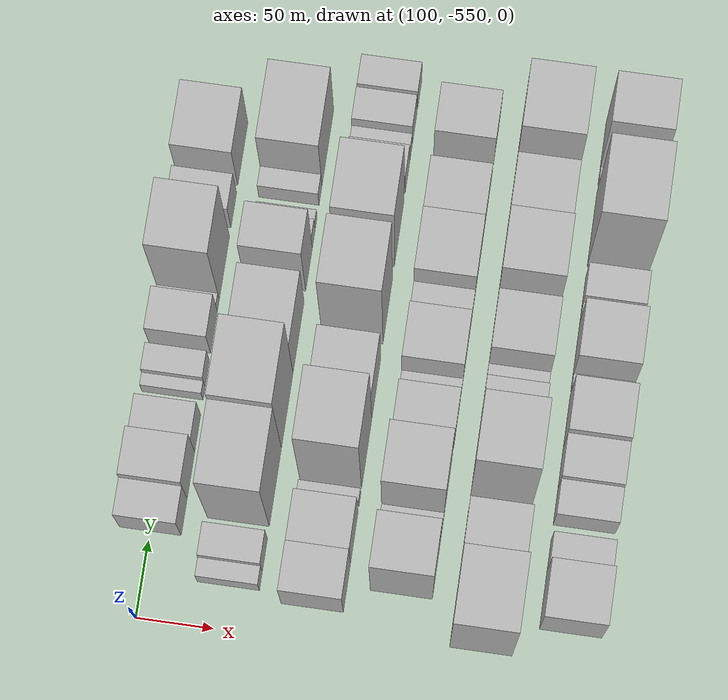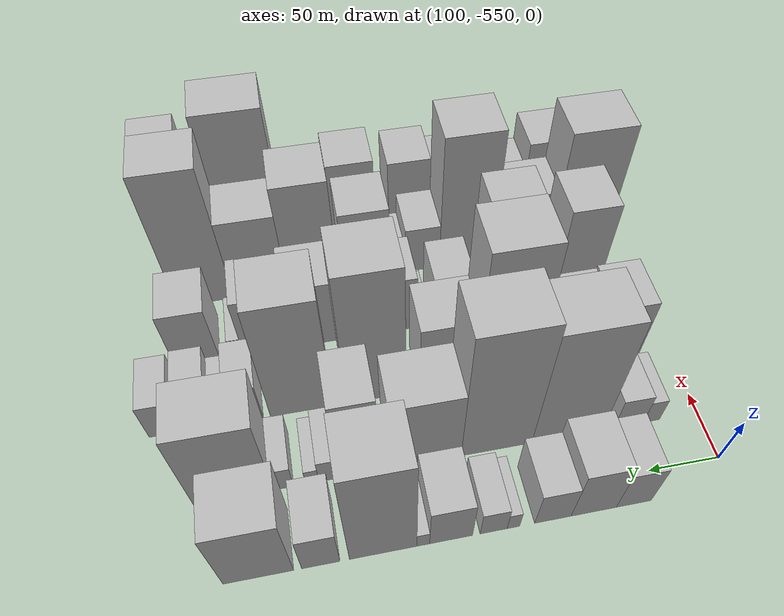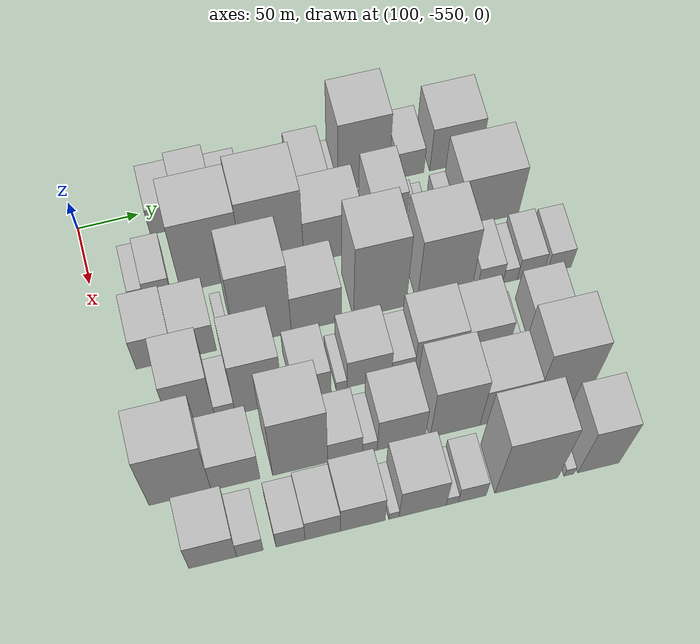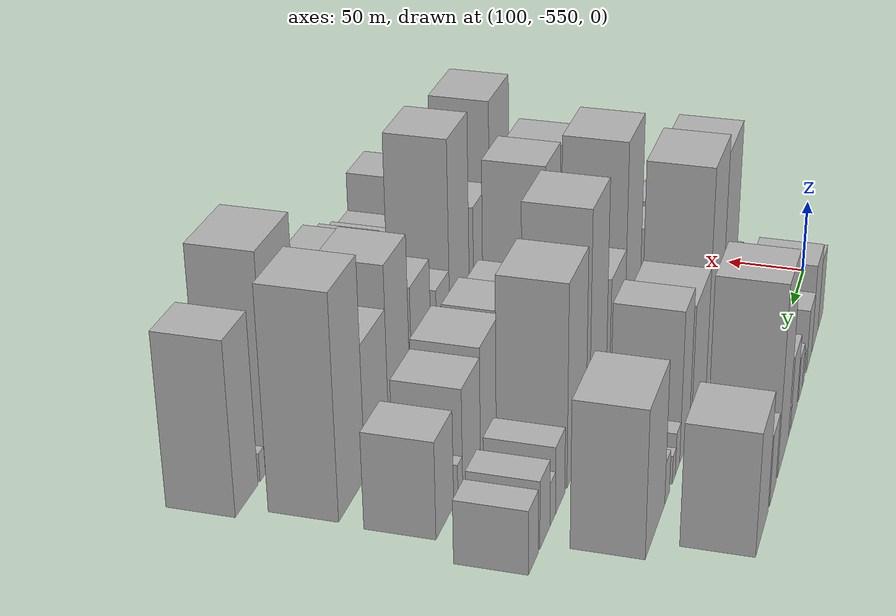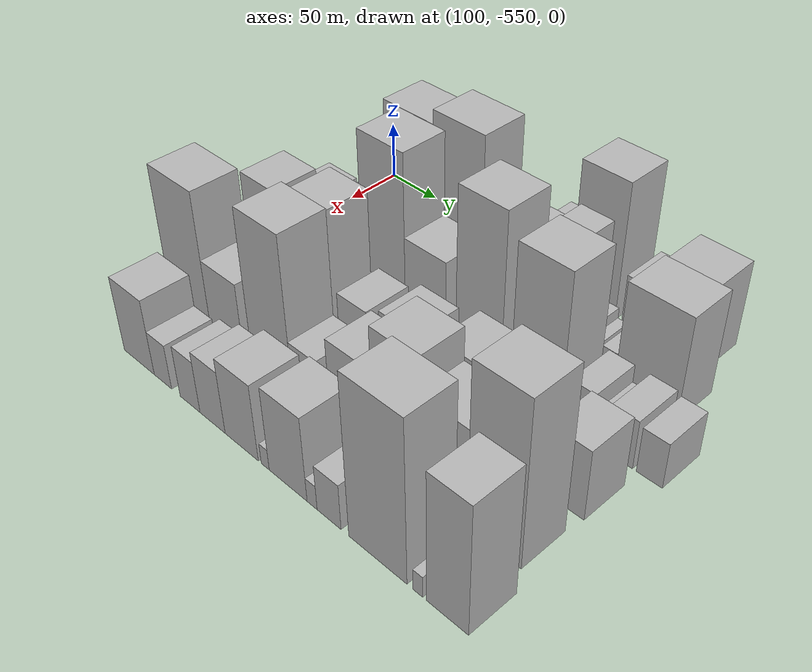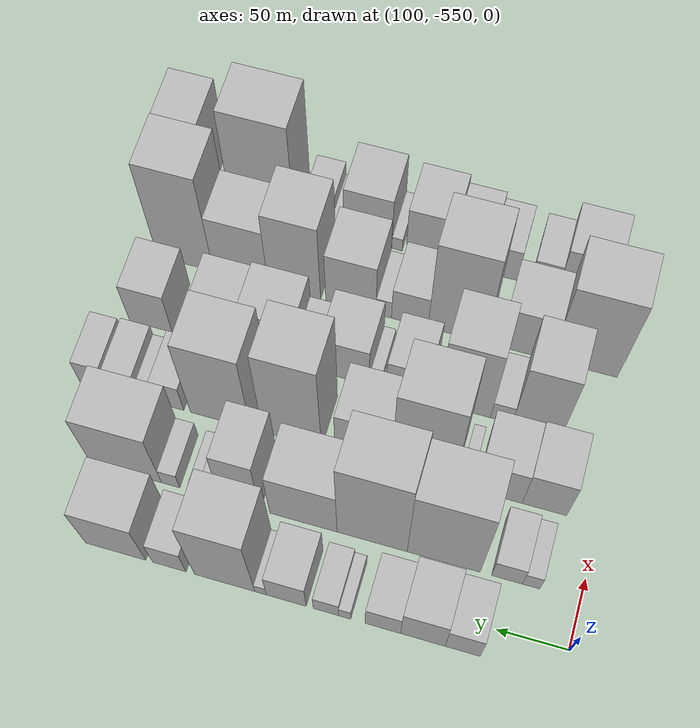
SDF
<sdf version="1.6">
 <world name="default">
  <model name="building_13">
   <static>1</static>
   <pose>100.0000 -481.6354 0 0.000000 0.000000 0.000000</pose>
   <link name="link">
    <pose>0 0 24.00 0 0 0</pose>
    <collision name="collision"><geometry><box><size>40.0000 24.1601 48.0000</size></box></geometry></collision>
    <visual name="visual">
     <cast_shadows>0</cast_shadows>
     <geometry><box><size>40.0000 24.1601 48.0000</size></box></geometry>
     <material>
      <script>
       <uri>model://HANNAS_wall/materials/scripts</uri>
       <uri>model://HANNAS_wall/materials/textures</uri>
       <name>vrc/HANNAS_wall</name>
      </script>
     </material>
    </visual>
   </link>
  </model>
  <model name="building_14">
   <static>1</static>
   <pose>100.0000 -454.1454 0 0.000000 0.000000 0.000000</pose>
   <link name="link">
    <pose>0 0 30.00 0 0 0</pose>
    <collision name="collision"><geometry><box><size>40.0000 30.8198 60.0000</size></box></geometry></collision>
    <visual name="visual">
     <cast_shadows>0</cast_shadows>
     <geometry><box><size>40.0000 30.8198 60.0000</size></box></geometry>
     <material>
      <script>
       <uri>model://HANNAS_wall/materials/scripts</uri>
       <uri>model://HANNAS_wall/materials/textures</uri>
       <name>vrc/HANNAS_wall</name>
      </script>
     </material>
    </visual>
   </link>
  </model>
  <model name="building_15">
   <static>1</static>
   <pose>100.0000 -426.4296 0 0.000000 0.000000 0.000000</pose>
   <link name="link">
    <pose>0 0 21.00 0 0 0</pose>
    <collision name="collision"><geometry><box><size>40.0000 24.6120 42.0000</size></box></geometry></collision>
    <visual name="visual">
     <cast_shadows>0</cast_shadows>
     <geometry><box><size>40.0000 24.6120 42.0000</size></box></geometry>
     <material>
      <script>
       <uri>model://HANNAS_wall/materials/scripts</uri>
       <uri>model://HANNAS_wall/materials/textures</uri>
       <name>vrc/HANNAS_wall</name>
      </script>
     </material>
    </visual>
   </link>
  </model>
  <model name="building_16">
   <static>1</static>
   <pose>100.0000 -399.9136 0 0.000000 0.000000 0.000000</pose>
   <link name="link">
    <pose>0 0 10.50 0 0 0</pose>
    <collision name="collision"><geometry><box><size>40.0000 8.4200 21.0000</size></box></geometry></collision>
    <visual name="visual">
     <cast_shadows>0</cast_shadows>
     <geometry><box><size>40.0000 8.4200 21.0000</size></box></geometry>
     <material>
      <script>
       <uri>model://HANNAS_wall/materials/scripts</uri>
       <uri>model://HANNAS_wall/materials/textures</uri>
       <name>vrc/HANNAS_wall</name>
      </script>
     </material>
    </visual>
   </link>
  </model>
  <model name="building_17">
   <static>1</static>
   <pose>100.0000 -386.7798 0 0.000000 0.000000 0.000000</pose>
   <link name="link">
    <pose>0 0 15.00 0 0 0</pose>
    <collision name="collision"><geometry><box><size>40.0000 17.8474 30.0000</size></box></geometry></collision>
    <visual name="visual">
     <cast_shadows>0</cast_shadows>
     <geometry><box><size>40.0000 17.8474 30.0000</size></box></geometry>
     <material>
      <script>
       <uri>model://HANNAS_wall/materials/scripts</uri>
       <uri>model://HANNAS_wall/materials/textures</uri>
       <name>vrc/HANNAS_wall</name>
      </script>
     </material>
    </visual>
   </link>
  </model>
  <model name="building_18">
   <static>1</static>
   <pose>100.0000 -358.8407 0 0.000000 0.000000 0.000000</pose>
   <link name="link">
    <pose>0 0 24.00 0 0 0</pose>
    <collision name="collision"><geometry><box><size>40.0000 28.0308 48.0000</size></box></geometry></collision>
    <visual name="visual">
     <cast_shadows>0</cast_shadows>
     <geometry><box><size>40.0000 28.0308 48.0000</size></box></geometry>
     <material>
      <script>
       <uri>model://HANNAS_wall/materials/scripts</uri>
       <uri>model://HANNAS_wall/materials/textures</uri>
       <name>vrc/HANNAS_wall</name>
      </script>
     </material>
    </visual>
   </link>
  </model>
  <model name="building_19">
   <static>1</static>
   <pose>100.0000 -340.6961 0 0.000000 0.000000 0.000000</pose>
   <link name="link">
    <pose>0 0 9.00 0 0 0</pose>
    <collision name="collision"><geometry><box><size>40.0000 8.2584 18.0000</size></box></geometry></collision>
    <visual name="visual">
     <cast_shadows>0</cast_shadows>
     <geometry><box><size>40.0000 8.2584 18.0000</size></box></geometry>
     <material>
      <script>
       <uri>model://HANNAS_wall/materials/scripts</uri>
       <uri>model://HANNAS_wall/materials/textures</uri>
       <name>vrc/HANNAS_wall</name>
      </script>
     </material>
    </visual>
   </link>
  </model>
  <model name="building_20">
   <static>1</static>
   <pose>100.0000 -314.9943 0 0.000000 0.000000 0.000000</pose>
   <link name="link">
    <pose>0 0 60.00 0 0 0</pose>
    <collision name="collision"><geometry><box><size>40.0000 43.1453 120.0000</size></box></geometry></collision>
    <visual name="visual">
     <cast_shadows>0</cast_shadows>
     <geometry><box><size>40.0000 43.1453 120.0000</size></box></geometry>
     <material>
      <script>
       <uri>model://HANNAS_wall/materials/scripts</uri>
       <uri>model://HANNAS_wall/materials/textures</uri>
       <name>vrc/HANNAS_wall</name>
      </script>
     </material>
    </visual>
   </link>
  </model>
  <model name="building_21">
   <static>1</static>
   <pose>100.0000 -275.4120 0 0.000000 0.000000 0.000000</pose>
   <link name="link">
    <pose>0 0 22.50 0 0 0</pose>
    <collision name="collision"><geometry><box><size>40.0000 24.0193 45.0000</size></box></geometry></collision>
    <visual name="visual">
     <cast_shadows>0</cast_shadows>
     <geometry><box><size>40.0000 24.0193 45.0000</size></box></geometry>
     <material>
      <script>
       <uri>model://HANNAS_wall/materials/scripts</uri>
       <uri>model://HANNAS_wall/materials/textures</uri>
       <name>vrc/HANNAS_wall</name>
      </script>
     </material>
    </visual>
   </link>
  </model>
  <model name="building_22">
   <static>1</static>
   <pose>100.0000 -236.6050 0 0.000000 0.000000 0.000000</pose>
   <link name="link">
    <pose>0 0 37.50 0 0 0</pose>
    <collision name="collision"><geometry><box><size>40.0000 43.5947 75.0000</size></box></geometry></collision>
    <visual name="visual">
     <cast_shadows>0</cast_shadows>
     <geometry><box><size>40.0000 43.5947 75.0000</size></box></geometry>
     <material>
      <script>
       <uri>model://HANNAS_wall/materials/scripts</uri>
       <uri>model://HANNAS_wall/materials/textures</uri>
       <name>vrc/HANNAS_wall</name>
      </script>
     </material>
    </visual>
   </link>
  </model>
  <model name="building_64">
   <static>1</static>
   <pose>155.0000 -515.5749 0 0.000000 0.000000 0.000000</pose>
   <link name="link">
    <pose>0 0 13.50 0 0 0</pose>
    <collision name="collision"><geometry><box><size>40.0000 12.0809 27.0000</size></box></geometry></collision>
    <visual name="visual">
     <cast_shadows>0</cast_shadows>
     <geometry><box><size>40.0000 12.0809 27.0000</size></box></geometry>
     <material>
      <script>
       <uri>model://HANNAS_wall/materials/scripts</uri>
       <uri>model://HANNAS_wall/materials/textures</uri>
       <name>vrc/HANNAS_wall</name>
      </script>
     </material>
    </visual>
   </link>
  </model>
  <model name="building_65">
   <static>1</static>
   <pose>155.0000 -498.7532 0 0.000000 0.000000 0.000000</pose>
   <link name="link">
    <pose>0 0 18.00 0 0 0</pose>
    <collision name="collision"><geometry><box><size>40.0000 21.5627 36.0000</size></box></geometry></collision>
    <visual name="visual">
     <cast_shadows>0</cast_shadows>
     <geometry><box><size>40.0000 21.5627 36.0000</size></box></geometry>
     <material>
      <script>
       <uri>model://HANNAS_wall/materials/scripts</uri>
       <uri>model://HANNAS_wall/materials/textures</uri>
       <name>vrc/HANNAS_wall</name>
      </script>
     </material>
    </visual>
   </link>
  </model>
  <model name="building_66">
   <static>1</static>
   <pose>155.0000 -454.1949 0 0.000000 0.000000 0.000000</pose>
   <link name="link">
    <pose>0 0 66.00 0 0 0</pose>
    <collision name="collision"><geometry><box><size>40.0000 51.5539 132.0000</size></box></geometry></collision>
    <visual name="visual">
     <cast_shadows>0</cast_shadows>
     <geometry><box><size>40.0000 51.5539 132.0000</size></box></geometry>
     <material>
      <script>
       <uri>model://HANNAS_wall/materials/scripts</uri>
       <uri>model://HANNAS_wall/materials/textures</uri>
       <name>vrc/HANNAS_wall</name>
      </script>
     </material>
    </visual>
   </link>
  </model>
  <model name="building_67">
   <static>1</static>
   <pose>155.0000 -403.4001 0 0.000000 0.000000 0.000000</pose>
   <link name="link">
    <pose>0 0 72.00 0 0 0</pose>
    <collision name="collision"><geometry><box><size>40.0000 50.0356 144.0000</size></box></geometry></collision>
    <visual name="visual">
     <cast_shadows>0</cast_shadows>
     <geometry><box><size>40.0000 50.0356 144.0000</size></box></geometry>
     <material>
      <script>
       <uri>model://HANNAS_wall/materials/scripts</uri>
       <uri>model://HANNAS_wall/materials/textures</uri>
       <name>vrc/HANNAS_wall</name>
      </script>
     </material>
    </visual>
   </link>
  </model>
  <model name="building_68">
   <static>1</static>
   <pose>155.0000 -354.1777 0 0.000000 0.000000 0.000000</pose>
   <link name="link">
    <pose>0 0 40.50 0 0 0</pose>
    <collision name="collision"><geometry><box><size>40.0000 48.4093 81.0000</size></box></geometry></collision>
    <visual name="visual">
     <cast_shadows>0</cast_shadows>
     <geometry><box><size>40.0000 48.4093 81.0000</size></box></geometry>
     <material>
      <script>
       <uri>model://HANNAS_wall/materials/scripts</uri>
       <uri>model://HANNAS_wall/materials/textures</uri>
       <name>vrc/HANNAS_wall</name>
      </script>
     </material>
    </visual>
   </link>
  </model>
  <model name="building_69">
   <static>1</static>
   <pose>155.0000 -308.4458 0 0.000000 0.000000 0.000000</pose>
   <link name="link">
    <pose>0 0 48.00 0 0 0</pose>
    <collision name="collision"><geometry><box><size>40.0000 29.0544 96.0000</size></box></geometry></collision>
    <visual name="visual">
     <cast_shadows>0</cast_shadows>
     <geometry><box><size>40.0000 29.0544 96.0000</size></box></geometry>
     <material>
      <script>
       <uri>model://HANNAS_wall/materials/scripts</uri>
       <uri>model://HANNAS_wall/materials/textures</uri>
       <name>vrc/HANNAS_wall</name>
      </script>
     </material>
    </visual>
   </link>
  </model>
  <model name="building_70">
   <static>1</static>
   <pose>155.0000 -287.5103 0 0.000000 0.000000 0.000000</pose>
   <link name="link">
    <pose>0 0 13.50 0 0 0</pose>
    <collision name="collision"><geometry><box><size>40.0000 12.8167 27.0000</size></box></geometry></collision>
    <visual name="visual">
     <cast_shadows>0</cast_shadows>
     <geometry><box><size>40.0000 12.8167 27.0000</size></box></geometry>
     <material>
      <script>
       <uri>model://HANNAS_wall/materials/scripts</uri>
       <uri>model://HANNAS_wall/materials/textures</uri>
       <name>vrc/HANNAS_wall</name>
      </script>
     </material>
    </visual>
   </link>
  </model>
  <model name="building_71">
   <static>1</static>
   <pose>155.0000 -276.6305 0 0.000000 0.000000 0.000000</pose>
   <link name="link">
    <pose>0 0 9.00 0 0 0</pose>
    <collision name="collision"><geometry><box><size>40.0000 8.9430 18.0000</size></box></geometry></collision>
    <visual name="visual">
     <cast_shadows>0</cast_shadows>
     <geometry><box><size>40.0000 8.9430 18.0000</size></box></geometry>
     <material>
      <script>
       <uri>model://HANNAS_wall/materials/scripts</uri>
       <uri>model://HANNAS_wall/materials/textures</uri>
       <name>vrc/HANNAS_wall</name>
      </script>
     </material>
    </visual>
   </link>
  </model>
  <model name="building_72">
   <static>1</static>
   <pose>155.0000 -257.4332 0 0.000000 0.000000 0.000000</pose>
   <link name="link">
    <pose>0 0 13.50 0 0 0</pose>
    <collision name="collision"><geometry><box><size>40.0000 13.4516 27.0000</size></box></geometry></collision>
    <visual name="visual">
     <cast_shadows>0</cast_shadows>
     <geometry><box><size>40.0000 13.4516 27.0000</size></box></geometry>
     <material>
      <script>
       <uri>model://HANNAS_wall/materials/scripts</uri>
       <uri>model://HANNAS_wall/materials/textures</uri>
       <name>vrc/HANNAS_wall</name>
      </script>
     </material>
    </visual>
   </link>
  </model>
  <model name="building_73">
   <static>1</static>
   <pose>155.0000 -224.4726 0 0.000000 0.000000 0.000000</pose>
   <link name="link">
    <pose>0 0 45.00 0 0 0</pose>
    <collision name="collision"><geometry><box><size>40.0000 52.4696 90.0000</size></box></geometry></collision>
    <visual name="visual">
     <cast_shadows>0</cast_shadows>
     <geometry><box><size>40.0000 52.4696 90.0000</size></box></geometry>
     <material>
      <script>
       <uri>model://HANNAS_wall/materials/scripts</uri>
       <uri>model://HANNAS_wall/materials/textures</uri>
       <name>vrc/HANNAS_wall</name>
      </script>
     </material>
    </visual>
   </link>
  </model>
  <model name="building_116">
   <static>1</static>
   <pose>210.0000 -512.0512 0 0.000000 0.000000 0.000000</pose>
   <link name="link">
    <pose>0 0 31.50 0 0 0</pose>
    <collision name="collision"><geometry><box><size>40.0000 31.7108 63.0000</size></box></geometry></collision>
    <visual name="visual">
     <cast_shadows>0</cast_shadows>
     <geometry><box><size>40.0000 31.7108 63.0000</size></box></geometry>
     <material>
      <script>
       <uri>model://HANNAS_wall/materials/scripts</uri>
       <uri>model://HANNAS_wall/materials/textures</uri>
       <name>vrc/HANNAS_wall</name>
      </script>
     </material>
    </visual>
   </link>
  </model>
  <model name="building_117">
   <static>1</static>
   <pose>210.0000 -479.5767 0 0.000000 0.000000 0.000000</pose>
   <link name="link">
    <pose>0 0 30.00 0 0 0</pose>
    <collision name="collision"><geometry><box><size>40.0000 33.2381 60.0000</size></box></geometry></collision>
    <visual name="visual">
     <cast_shadows>0</cast_shadows>
     <geometry><box><size>40.0000 33.2381 60.0000</size></box></geometry>
     <material>
      <script>
       <uri>model://HANNAS_wall/materials/scripts</uri>
       <uri>model://HANNAS_wall/materials/textures</uri>
       <name>vrc/HANNAS_wall</name>
      </script>
     </material>
    </visual>
   </link>
  </model>
  <model name="building_118">
   <static>1</static>
   <pose>210.0000 -454.7564 0 0.000000 0.000000 0.000000</pose>
   <link name="link">
    <pose>0 0 10.50 0 0 0</pose>
    <collision name="collision"><geometry><box><size>40.0000 8.4026 21.0000</size></box></geometry></collision>
    <visual name="visual">
     <cast_shadows>0</cast_shadows>
     <geometry><box><size>40.0000 8.4026 21.0000</size></box></geometry>
     <material>
      <script>
       <uri>model://HANNAS_wall/materials/scripts</uri>
       <uri>model://HANNAS_wall/materials/textures</uri>
       <name>vrc/HANNAS_wall</name>
      </script>
     </material>
    </visual>
   </link>
  </model>
  <model name="building_119">
   <static>1</static>
   <pose>210.0000 -424.7437 0 0.000000 0.000000 0.000000</pose>
   <link name="link">
    <pose>0 0 72.00 0 0 0</pose>
    <collision name="collision"><geometry><box><size>40.0000 45.6228 144.0000</size></box></geometry></collision>
    <visual name="visual">
     <cast_shadows>0</cast_shadows>
     <geometry><box><size>40.0000 45.6228 144.0000</size></box></geometry>
     <material>
      <script>
       <uri>model://HANNAS_wall/materials/scripts</uri>
       <uri>model://HANNAS_wall/materials/textures</uri>
       <name>vrc/HANNAS_wall</name>
      </script>
     </material>
    </visual>
   </link>
  </model>
  <model name="building_120">
   <static>1</static>
   <pose>210.0000 -381.4199 0 0.000000 0.000000 0.000000</pose>
   <link name="link">
    <pose>0 0 37.50 0 0 0</pose>
    <collision name="collision"><geometry><box><size>40.0000 41.0248 75.0000</size></box></geometry></collision>
    <visual name="visual">
     <cast_shadows>0</cast_shadows>
     <geometry><box><size>40.0000 41.0248 75.0000</size></box></geometry>
     <material>
      <script>
       <uri>model://HANNAS_wall/materials/scripts</uri>
       <uri>model://HANNAS_wall/materials/textures</uri>
       <name>vrc/HANNAS_wall</name>
      </script>
     </material>
    </visual>
   </link>
  </model>
  <model name="building_121">
   <static>1</static>
   <pose>210.0000 -329.2158 0 0.000000 0.000000 0.000000</pose>
   <link name="link">
    <pose>0 0 72.00 0 0 0</pose>
    <collision name="collision"><geometry><box><size>40.0000 43.3836 144.0000</size></box></geometry></collision>
    <visual name="visual">
     <cast_shadows>0</cast_shadows>
     <geometry><box><size>40.0000 43.3836 144.0000</size></box></geometry>
     <material>
      <script>
       <uri>model://HANNAS_wall/materials/scripts</uri>
       <uri>model://HANNAS_wall/materials/textures</uri>
       <name>vrc/HANNAS_wall</name>
      </script>
     </material>
    </visual>
   </link>
  </model>
  <model name="building_122">
   <static>1</static>
   <pose>210.0000 -275.9784 0 0.000000 0.000000 0.000000</pose>
   <link name="link">
    <pose>0 0 63.00 0 0 0</pose>
    <collision name="collision"><geometry><box><size>40.0000 45.0911 126.0000</size></box></geometry></collision>
    <visual name="visual">
     <cast_shadows>0</cast_shadows>
     <geometry><box><size>40.0000 45.0911 126.0000</size></box></geometry>
     <material>
      <script>
       <uri>model://HANNAS_wall/materials/scripts</uri>
       <uri>model://HANNAS_wall/materials/textures</uri>
       <name>vrc/HANNAS_wall</name>
      </script>
     </material>
    </visual>
   </link>
  </model>
  <model name="building_123">
   <static>1</static>
   <pose>210.0000 -237.7855 0 0.000000 0.000000 0.000000</pose>
   <link name="link">
    <pose>0 0 21.00 0 0 0</pose>
    <collision name="collision"><geometry><box><size>40.0000 21.2947 42.0000</size></box></geometry></collision>
    <visual name="visual">
     <cast_shadows>0</cast_shadows>
     <geometry><box><size>40.0000 21.2947 42.0000</size></box></geometry>
     <material>
      <script>
       <uri>model://HANNAS_wall/materials/scripts</uri>
       <uri>model://HANNAS_wall/materials/textures</uri>
       <name>vrc/HANNAS_wall</name>
      </script>
     </material>
    </visual>
   </link>
  </model>
  <model name="building_124">
   <static>1</static>
   <pose>210.0000 -221.0467 0 0.000000 0.000000 0.000000</pose>
   <link name="link">
    <pose>0 0 13.50 0 0 0</pose>
    <collision name="collision"><geometry><box><size>40.0000 12.1828 27.0000</size></box></geometry></collision>
    <visual name="visual">
     <cast_shadows>0</cast_shadows>
     <geometry><box><size>40.0000 12.1828 27.0000</size></box></geometry>
     <material>
      <script>
       <uri>model://HANNAS_wall/materials/scripts</uri>
       <uri>model://HANNAS_wall/materials/textures</uri>
       <name>vrc/HANNAS_wall</name>
      </script>
     </material>
    </visual>
   </link>
  </model>
  <model name="building_125">
   <static>1</static>
   <pose>210.0000 -204.0303 0 0.000000 0.000000 0.000000</pose>
   <link name="link">
    <pose>0 0 21.00 0 0 0</pose>
    <collision name="collision"><geometry><box><size>40.0000 21.8500 42.0000</size></box></geometry></collision>
    <visual name="visual">
     <cast_shadows>0</cast_shadows>
     <geometry><box><size>40.0000 21.8500 42.0000</size></box></geometry>
     <material>
      <script>
       <uri>model://HANNAS_wall/materials/scripts</uri>
       <uri>model://HANNAS_wall/materials/textures</uri>
       <name>vrc/HANNAS_wall</name>
      </script>
     </material>
    </visual>
   </link>
  </model>
  <model name="building_126">
   <static>1</static>
   <pose>210.0000 -179.8747 0 0.000000 0.000000 0.000000</pose>
   <link name="link">
    <pose>0 0 19.50 0 0 0</pose>
    <collision name="collision"><geometry><box><size>40.0000 20.4613 39.0000</size></box></geometry></collision>
    <visual name="visual">
     <cast_shadows>0</cast_shadows>
     <geometry><box><size>40.0000 20.4613 39.0000</size></box></geometry>
     <material>
      <script>
       <uri>model://HANNAS_wall/materials/scripts</uri>
       <uri>model://HANNAS_wall/materials/textures</uri>
       <name>vrc/HANNAS_wall</name>
      </script>
     </material>
    </visual>
   </link>
  </model>
  <model name="building_166">
   <static>1</static>
   <pose>265.0000 -493.7711 0 0.000000 0.000000 0.000000</pose>
   <link name="link">
    <pose>0 0 52.50 0 0 0</pose>
    <collision name="collision"><geometry><box><size>40.0000 35.5641 105.0000</size></box></geometry></collision>
    <visual name="visual">
     <cast_shadows>0</cast_shadows>
     <geometry><box><size>40.0000 35.5641 105.0000</size></box></geometry>
     <material>
      <script>
       <uri>model://HANNAS_wall/materials/scripts</uri>
       <uri>model://HANNAS_wall/materials/textures</uri>
       <name>vrc/HANNAS_wall</name>
      </script>
     </material>
    </visual>
   </link>
  </model>
  <model name="building_167">
   <static>1</static>
   <pose>265.0000 -468.0096 0 0.000000 0.000000 0.000000</pose>
   <link name="link">
    <pose>0 0 15.00 0 0 0</pose>
    <collision name="collision"><geometry><box><size>40.0000 15.9589 30.0000</size></box></geometry></collision>
    <visual name="visual">
     <cast_shadows>0</cast_shadows>
     <geometry><box><size>40.0000 15.9589 30.0000</size></box></geometry>
     <material>
      <script>
       <uri>model://HANNAS_wall/materials/scripts</uri>
       <uri>model://HANNAS_wall/materials/textures</uri>
       <name>vrc/HANNAS_wall</name>
      </script>
     </material>
    </visual>
   </link>
  </model>
  <model name="building_168">
   <static>1</static>
   <pose>265.0000 -440.8555 0 0.000000 0.000000 0.000000</pose>
   <link name="link">
    <pose>0 0 57.00 0 0 0</pose>
    <collision name="collision"><geometry><box><size>40.0000 38.3493 114.0000</size></box></geometry></collision>
    <visual name="visual">
     <cast_shadows>0</cast_shadows>
     <geometry><box><size>40.0000 38.3493 114.0000</size></box></geometry>
     <material>
      <script>
       <uri>model://HANNAS_wall/materials/scripts</uri>
       <uri>model://HANNAS_wall/materials/textures</uri>
       <name>vrc/HANNAS_wall</name>
      </script>
     </material>
    </visual>
   </link>
  </model>
  <model name="building_169">
   <static>1</static>
   <pose>265.0000 -397.7818 0 0.000000 0.000000 0.000000</pose>
   <link name="link">
    <pose>0 0 25.50 0 0 0</pose>
    <collision name="collision"><geometry><box><size>40.0000 29.7981 51.0000</size></box></geometry></collision>
    <visual name="visual">
     <cast_shadows>0</cast_shadows>
     <geometry><box><size>40.0000 29.7981 51.0000</size></box></geometry>
     <material>
      <script>
       <uri>model://HANNAS_wall/materials/scripts</uri>
       <uri>model://HANNAS_wall/materials/textures</uri>
       <name>vrc/HANNAS_wall</name>
      </script>
     </material>
    </visual>
   </link>
  </model>
  <model name="building_170">
   <static>1</static>
   <pose>265.0000 -374.4734 0 0.000000 0.000000 0.000000</pose>
   <link name="link">
    <pose>0 0 9.00 0 0 0</pose>
    <collision name="collision"><geometry><box><size>40.0000 8.8188 18.0000</size></box></geometry></collision>
    <visual name="visual">
     <cast_shadows>0</cast_shadows>
     <geometry><box><size>40.0000 8.8188 18.0000</size></box></geometry>
     <material>
      <script>
       <uri>model://HANNAS_wall/materials/scripts</uri>
       <uri>model://HANNAS_wall/materials/textures</uri>
       <name>vrc/HANNAS_wall</name>
      </script>
     </material>
    </visual>
   </link>
  </model>
  <model name="building_171">
   <static>1</static>
   <pose>265.0000 -352.1030 0 0.000000 0.000000 0.000000</pose>
   <link name="link">
    <pose>0 0 30.00 0 0 0</pose>
    <collision name="collision"><geometry><box><size>40.0000 35.9220 60.0000</size></box></geometry></collision>
    <visual name="visual">
     <cast_shadows>0</cast_shadows>
     <geometry><box><size>40.0000 35.9220 60.0000</size></box></geometry>
     <material>
      <script>
       <uri>model://HANNAS_wall/materials/scripts</uri>
       <uri>model://HANNAS_wall/materials/textures</uri>
       <name>vrc/HANNAS_wall</name>
      </script>
     </material>
    </visual>
   </link>
  </model>
  <model name="building_172">
   <static>1</static>
   <pose>265.0000 -324.6180 0 0.000000 0.000000 0.000000</pose>
   <link name="link">
    <pose>0 0 18.00 0 0 0</pose>
    <collision name="collision"><geometry><box><size>40.0000 19.0482 36.0000</size></box></geometry></collision>
    <visual name="visual">
     <cast_shadows>0</cast_shadows>
     <geometry><box><size>40.0000 19.0482 36.0000</size></box></geometry>
     <material>
      <script>
       <uri>model://HANNAS_wall/materials/scripts</uri>
       <uri>model://HANNAS_wall/materials/textures</uri>
       <name>vrc/HANNAS_wall</name>
      </script>
     </material>
    </visual>
   </link>
  </model>
  <model name="building_173">
   <static>1</static>
   <pose>265.0000 -294.5180 0 0.000000 0.000000 0.000000</pose>
   <link name="link">
    <pose>0 0 34.50 0 0 0</pose>
    <collision name="collision"><geometry><box><size>40.0000 41.1518 69.0000</size></box></geometry></collision>
    <visual name="visual">
     <cast_shadows>0</cast_shadows>
     <geometry><box><size>40.0000 41.1518 69.0000</size></box></geometry>
     <material>
      <script>
       <uri>model://HANNAS_wall/materials/scripts</uri>
       <uri>model://HANNAS_wall/materials/textures</uri>
       <name>vrc/HANNAS_wall</name>
      </script>
     </material>
    </visual>
   </link>
  </model>
  <model name="building_174">
   <static>1</static>
   <pose>265.0000 -256.0950 0 0.000000 0.000000 0.000000</pose>
   <link name="link">
    <pose>0 0 31.50 0 0 0</pose>
    <collision name="collision"><geometry><box><size>40.0000 35.6942 63.0000</size></box></geometry></collision>
    <visual name="visual">
     <cast_shadows>0</cast_shadows>
     <geometry><box><size>40.0000 35.6942 63.0000</size></box></geometry>
     <material>
      <script>
       <uri>model://HANNAS_wall/materials/scripts</uri>
       <uri>model://HANNAS_wall/materials/textures</uri>
       <name>vrc/HANNAS_wall</name>
      </script>
     </material>
    </visual>
   </link>
  </model>
  <model name="building_175">
   <static>1</static>
   <pose>265.0000 -233.5394 0 0.000000 0.000000 0.000000</pose>
   <link name="link">
    <pose>0 0 10.50 0 0 0</pose>
    <collision name="collision"><geometry><box><size>40.0000 9.4171 21.0000</size></box></geometry></collision>
    <visual name="visual">
     <cast_shadows>0</cast_shadows>
     <geometry><box><size>40.0000 9.4171 21.0000</size></box></geometry>
     <material>
      <script>
       <uri>model://HANNAS_wall/materials/scripts</uri>
       <uri>model://HANNAS_wall/materials/textures</uri>
       <name>vrc/HANNAS_wall</name>
      </script>
     </material>
    </visual>
   </link>
  </model>
  <model name="building_176">
   <static>1</static>
   <pose>265.0000 -204.3934 0 0.000000 0.000000 0.000000</pose>
   <link name="link">
    <pose>0 0 30.00 0 0 0</pose>
    <collision name="collision"><geometry><box><size>40.0000 32.8749 60.0000</size></box></geometry></collision>
    <visual name="visual">
     <cast_shadows>0</cast_shadows>
     <geometry><box><size>40.0000 32.8749 60.0000</size></box></geometry>
     <material>
      <script>
       <uri>model://HANNAS_wall/materials/scripts</uri>
       <uri>model://HANNAS_wall/materials/textures</uri>
       <name>vrc/HANNAS_wall</name>
      </script>
     </material>
    </visual>
   </link>
  </model>
  <model name="building_224">
   <static>1</static>
   <pose>320.0000 -515.8877 0 0.000000 0.000000 0.000000</pose>
   <link name="link">
    <pose>0 0 61.50 0 0 0</pose>
    <collision name="collision"><geometry><box><size>40.0000 48.8192 123.0000</size></box></geometry></collision>
    <visual name="visual">
     <cast_shadows>0</cast_shadows>
     <geometry><box><size>40.0000 48.8192 123.0000</size></box></geometry>
     <material>
      <script>
       <uri>model://HANNAS_wall/materials/scripts</uri>
       <uri>model://HANNAS_wall/materials/textures</uri>
       <name>vrc/HANNAS_wall</name>
      </script>
     </material>
    </visual>
   </link>
  </model>
  <model name="building_225">
   <static>1</static>
   <pose>320.0000 -472.2455 0 0.000000 0.000000 0.000000</pose>
   <link name="link">
    <pose>0 0 33.00 0 0 0</pose>
    <collision name="collision"><geometry><box><size>40.0000 38.4653 66.0000</size></box></geometry></collision>
    <visual name="visual">
     <cast_shadows>0</cast_shadows>
     <geometry><box><size>40.0000 38.4653 66.0000</size></box></geometry>
     <material>
      <script>
       <uri>model://HANNAS_wall/materials/scripts</uri>
       <uri>model://HANNAS_wall/materials/textures</uri>
       <name>vrc/HANNAS_wall</name>
      </script>
     </material>
    </visual>
   </link>
  </model>
  <model name="building_226">
   <static>1</static>
   <pose>320.0000 -421.1231 0 0.000000 0.000000 0.000000</pose>
   <link name="link">
    <pose>0 0 67.50 0 0 0</pose>
    <collision name="collision"><geometry><box><size>40.0000 43.7795 135.0000</size></box></geometry></collision>
    <visual name="visual">
     <cast_shadows>0</cast_shadows>
     <geometry><box><size>40.0000 43.7795 135.0000</size></box></geometry>
     <material>
      <script>
       <uri>model://HANNAS_wall/materials/scripts</uri>
       <uri>model://HANNAS_wall/materials/textures</uri>
       <name>vrc/HANNAS_wall</name>
      </script>
     </material>
    </visual>
   </link>
  </model>
  <model name="building_227">
   <static>1</static>
   <pose>320.0000 -385.4197 0 0.000000 0.000000 0.000000</pose>
   <link name="link">
    <pose>0 0 24.00 0 0 0</pose>
    <collision name="collision"><geometry><box><size>40.0000 27.6273 48.0000</size></box></geometry></collision>
    <visual name="visual">
     <cast_shadows>0</cast_shadows>
     <geometry><box><size>40.0000 27.6273 48.0000</size></box></geometry>
     <material>
      <script>
       <uri>model://HANNAS_wall/materials/scripts</uri>
       <uri>model://HANNAS_wall/materials/textures</uri>
       <name>vrc/HANNAS_wall</name>
      </script>
     </material>
    </visual>
   </link>
  </model>
  <model name="building_228">
   <static>1</static>
   <pose>320.0000 -365.6850 0 0.000000 0.000000 0.000000</pose>
   <link name="link">
    <pose>0 0 13.50 0 0 0</pose>
    <collision name="collision"><geometry><box><size>40.0000 11.8422 27.0000</size></box></geometry></collision>
    <visual name="visual">
     <cast_shadows>0</cast_shadows>
     <geometry><box><size>40.0000 11.8422 27.0000</size></box></geometry>
     <material>
      <script>
       <uri>model://HANNAS_wall/materials/scripts</uri>
       <uri>model://HANNAS_wall/materials/textures</uri>
       <name>vrc/HANNAS_wall</name>
      </script>
     </material>
    </visual>
   </link>
  </model>
  <model name="building_229">
   <static>1</static>
   <pose>320.0000 -340.6272 0 0.000000 0.000000 0.000000</pose>
   <link name="link">
    <pose>0 0 37.50 0 0 0</pose>
    <collision name="collision"><geometry><box><size>40.0000 38.2734 75.0000</size></box></geometry></collision>
    <visual name="visual">
     <cast_shadows>0</cast_shadows>
     <geometry><box><size>40.0000 38.2734 75.0000</size></box></geometry>
     <material>
      <script>
       <uri>model://HANNAS_wall/materials/scripts</uri>
       <uri>model://HANNAS_wall/materials/textures</uri>
       <name>vrc/HANNAS_wall</name>
      </script>
     </material>
    </visual>
   </link>
  </model>
  <model name="building_230">
   <static>1</static>
   <pose>320.0000 -297.3050 0 0.000000 0.000000 0.000000</pose>
   <link name="link">
    <pose>0 0 55.50 0 0 0</pose>
    <collision name="collision"><geometry><box><size>40.0000 40.3709 111.0000</size></box></geometry></collision>
    <visual name="visual">
     <cast_shadows>0</cast_shadows>
     <geometry><box><size>40.0000 40.3709 111.0000</size></box></geometry>
     <material>
      <script>
       <uri>model://HANNAS_wall/materials/scripts</uri>
       <uri>model://HANNAS_wall/materials/textures</uri>
       <name>vrc/HANNAS_wall</name>
      </script>
     </material>
    </visual>
   </link>
  </model>
  <model name="building_231">
   <static>1</static>
   <pose>320.0000 -255.7747 0 0.000000 0.000000 0.000000</pose>
   <link name="link">
    <pose>0 0 42.00 0 0 0</pose>
    <collision name="collision"><geometry><box><size>40.0000 42.6899 84.0000</size></box></geometry></collision>
    <visual name="visual">
     <cast_shadows>0</cast_shadows>
     <geometry><box><size>40.0000 42.6899 84.0000</size></box></geometry>
     <material>
      <script>
       <uri>model://HANNAS_wall/materials/scripts</uri>
       <uri>model://HANNAS_wall/materials/textures</uri>
       <name>vrc/HANNAS_wall</name>
      </script>
     </material>
    </visual>
   </link>
  </model>
  <model name="building_232">
   <static>1</static>
   <pose>320.0000 -212.4566 0 0.000000 0.000000 0.000000</pose>
   <link name="link">
    <pose>0 0 69.00 0 0 0</pose>
    <collision name="collision"><geometry><box><size>40.0000 43.9463 138.0000</size></box></geometry></collision>
    <visual name="visual">
     <cast_shadows>0</cast_shadows>
     <geometry><box><size>40.0000 43.9463 138.0000</size></box></geometry>
     <material>
      <script>
       <uri>model://HANNAS_wall/materials/scripts</uri>
       <uri>model://HANNAS_wall/materials/textures</uri>
       <name>vrc/HANNAS_wall</name>
      </script>
     </material>
    </visual>
   </link>
  </model>
  <model name="building_272">
   <static>1</static>
   <pose>375.0000 -502.3927 0 0.000000 0.000000 0.000000</pose>
   <link name="link">
    <pose>0 0 33.00 0 0 0</pose>
    <collision name="collision"><geometry><box><size>40.0000 37.0514 66.0000</size></box></geometry></collision>
    <visual name="visual">
     <cast_shadows>0</cast_shadows>
     <geometry><box><size>40.0000 37.0514 66.0000</size></box></geometry>
     <material>
      <script>
       <uri>model://HANNAS_wall/materials/scripts</uri>
       <uri>model://HANNAS_wall/materials/textures</uri>
       <name>vrc/HANNAS_wall</name>
      </script>
     </material>
    </visual>
   </link>
  </model>
  <model name="building_273">
   <static>1</static>
   <pose>375.0000 -473.5455 0 0.000000 0.000000 0.000000</pose>
   <link name="link">
    <pose>0 0 19.50 0 0 0</pose>
    <collision name="collision"><geometry><box><size>40.0000 20.6430 39.0000</size></box></geometry></collision>
    <visual name="visual">
     <cast_shadows>0</cast_shadows>
     <geometry><box><size>40.0000 20.6430 39.0000</size></box></geometry>
     <material>
      <script>
       <uri>model://HANNAS_wall/materials/scripts</uri>
       <uri>model://HANNAS_wall/materials/textures</uri>
       <name>vrc/HANNAS_wall</name>
      </script>
     </material>
    </visual>
   </link>
  </model>
  <model name="building_274">
   <static>1</static>
   <pose>375.0000 -441.8641 0 0.000000 0.000000 0.000000</pose>
   <link name="link">
    <pose>0 0 22.50 0 0 0</pose>
    <collision name="collision"><geometry><box><size>40.0000 22.7198 45.0000</size></box></geometry></collision>
    <visual name="visual">
     <cast_shadows>0</cast_shadows>
     <geometry><box><size>40.0000 22.7198 45.0000</size></box></geometry>
     <material>
      <script>
       <uri>model://HANNAS_wall/materials/scripts</uri>
       <uri>model://HANNAS_wall/materials/textures</uri>
       <name>vrc/HANNAS_wall</name>
      </script>
     </material>
    </visual>
   </link>
  </model>
  <model name="building_275">
   <static>1</static>
   <pose>375.0000 -416.6053 0 0.000000 0.000000 0.000000</pose>
   <link name="link">
    <pose>0 0 27.00 0 0 0</pose>
    <collision name="collision"><geometry><box><size>40.0000 27.7979 54.0000</size></box></geometry></collision>
    <visual name="visual">
     <cast_shadows>0</cast_shadows>
     <geometry><box><size>40.0000 27.7979 54.0000</size></box></geometry>
     <material>
      <script>
       <uri>model://HANNAS_wall/materials/scripts</uri>
       <uri>model://HANNAS_wall/materials/textures</uri>
       <name>vrc/HANNAS_wall</name>
      </script>
     </material>
    </visual>
   </link>
  </model>
  <model name="building_276">
   <static>1</static>
   <pose>375.0000 -385.2413 0 0.000000 0.000000 0.000000</pose>
   <link name="link">
    <pose>0 0 33.00 0 0 0</pose>
    <collision name="collision"><geometry><box><size>40.0000 34.9301 66.0000</size></box></geometry></collision>
    <visual name="visual">
     <cast_shadows>0</cast_shadows>
     <geometry><box><size>40.0000 34.9301 66.0000</size></box></geometry>
     <material>
      <script>
       <uri>model://HANNAS_wall/materials/scripts</uri>
       <uri>model://HANNAS_wall/materials/textures</uri>
       <name>vrc/HANNAS_wall</name>
      </script>
     </material>
    </visual>
   </link>
  </model>
  <model name="building_277">
   <static>1</static>
   <pose>375.0000 -360.7014 0 0.000000 0.000000 0.000000</pose>
   <link name="link">
    <pose>0 0 9.00 0 0 0</pose>
    <collision name="collision"><geometry><box><size>40.0000 8.1497 18.0000</size></box></geometry></collision>
    <visual name="visual">
     <cast_shadows>0</cast_shadows>
     <geometry><box><size>40.0000 8.1497 18.0000</size></box></geometry>
     <material>
      <script>
       <uri>model://HANNAS_wall/materials/scripts</uri>
       <uri>model://HANNAS_wall/materials/textures</uri>
       <name>vrc/HANNAS_wall</name>
      </script>
     </material>
    </visual>
   </link>
  </model>
  <model name="building_278">
   <static>1</static>
   <pose>375.0000 -337.9861 0 0.000000 0.000000 0.000000</pose>
   <link name="link">
    <pose>0 0 36.00 0 0 0</pose>
    <collision name="collision"><geometry><box><size>40.0000 37.2808 72.0000</size></box></geometry></collision>
    <visual name="visual">
     <cast_shadows>0</cast_shadows>
     <geometry><box><size>40.0000 37.2808 72.0000</size></box></geometry>
     <material>
      <script>
       <uri>model://HANNAS_wall/materials/scripts</uri>
       <uri>model://HANNAS_wall/materials/textures</uri>
       <name>vrc/HANNAS_wall</name>
      </script>
     </material>
    </visual>
   </link>
  </model>
  <model name="building_279">
   <static>1</static>
   <pose>375.0000 -314.5605 0 0.000000 0.000000 0.000000</pose>
   <link name="link">
    <pose>0 0 10.50 0 0 0</pose>
    <collision name="collision"><geometry><box><size>40.0000 9.5704 21.0000</size></box></geometry></collision>
    <visual name="visual">
     <cast_shadows>0</cast_shadows>
     <geometry><box><size>40.0000 9.5704 21.0000</size></box></geometry>
     <material>
      <script>
       <uri>model://HANNAS_wall/materials/scripts</uri>
       <uri>model://HANNAS_wall/materials/textures</uri>
       <name>vrc/HANNAS_wall</name>
      </script>
     </material>
    </visual>
   </link>
  </model>
  <model name="building_280">
   <static>1</static>
   <pose>375.0000 -298.6782 0 0.000000 0.000000 0.000000</pose>
   <link name="link">
    <pose>0 0 19.50 0 0 0</pose>
    <collision name="collision"><geometry><box><size>40.0000 22.1943 39.0000</size></box></geometry></collision>
    <visual name="visual">
     <cast_shadows>0</cast_shadows>
     <geometry><box><size>40.0000 22.1943 39.0000</size></box></geometry>
     <material>
      <script>
       <uri>model://HANNAS_wall/materials/scripts</uri>
       <uri>model://HANNAS_wall/materials/textures</uri>
       <name>vrc/HANNAS_wall</name>
      </script>
     </material>
    </visual>
   </link>
  </model>
  <model name="building_281">
   <static>1</static>
   <pose>375.0000 -255.3266 0 0.000000 0.000000 0.000000</pose>
   <link name="link">
    <pose>0 0 67.50 0 0 0</pose>
    <collision name="collision"><geometry><box><size>40.0000 50.5088 135.0000</size></box></geometry></collision>
    <visual name="visual">
     <cast_shadows>0</cast_shadows>
     <geometry><box><size>40.0000 50.5088 135.0000</size></box></geometry>
     <material>
      <script>
       <uri>model://HANNAS_wall/materials/scripts</uri>
       <uri>model://HANNAS_wall/materials/textures</uri>
       <name>vrc/HANNAS_wall</name>
      </script>
     </material>
    </visual>
   </link>
  </model>
  <model name="building_282">
   <static>1</static>
   <pose>375.0000 -221.0557 0 0.000000 0.000000 0.000000</pose>
   <link name="link">
    <pose>0 0 9.00 0 0 0</pose>
    <collision name="collision"><geometry><box><size>40.0000 8.0329 18.0000</size></box></geometry></collision>
    <visual name="visual">
     <cast_shadows>0</cast_shadows>
     <geometry><box><size>40.0000 8.0329 18.0000</size></box></geometry>
     <material>
      <script>
       <uri>model://HANNAS_wall/materials/scripts</uri>
       <uri>model://HANNAS_wall/materials/textures</uri>
       <name>vrc/HANNAS_wall</name>
      </script>
     </material>
    </visual>
   </link>
  </model>
  <model name="building_283">
   <static>1</static>
   <pose>375.0000 -197.3740 0 0.000000 0.000000 0.000000</pose>
   <link name="link">
    <pose>0 0 54.00 0 0 0</pose>
    <collision name="collision"><geometry><box><size>40.0000 33.3305 108.0000</size></box></geometry></collision>
    <visual name="visual">
     <cast_shadows>0</cast_shadows>
     <geometry><box><size>40.0000 33.3305 108.0000</size></box></geometry>
     <material>
      <script>
       <uri>model://HANNAS_wall/materials/scripts</uri>
       <uri>model://HANNAS_wall/materials/textures</uri>
       <name>vrc/HANNAS_wall</name>
      </script>
     </material>
    </visual>
   </link>
  </model>
 </world>
</sdf>
